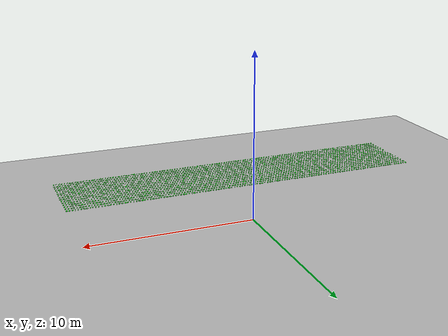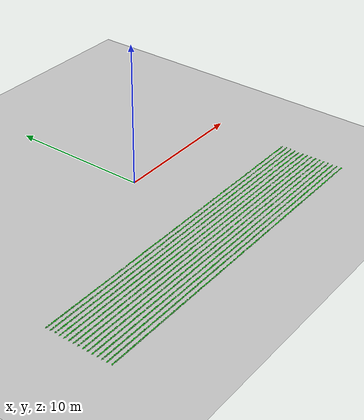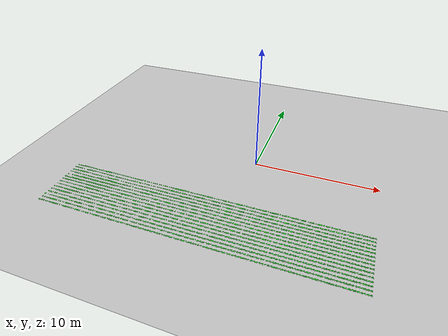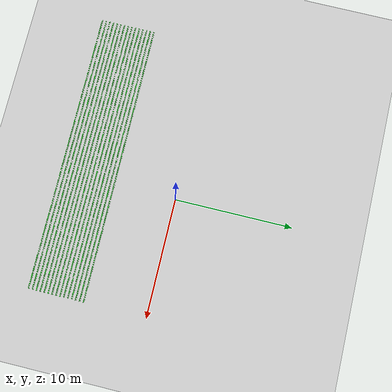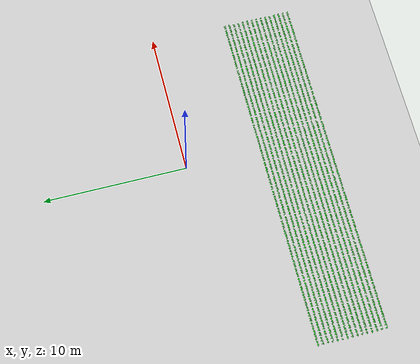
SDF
<sdf version="1.7">
 <world name="default">
  <model name="ground_plane">
   <static>1</static>
   <link name="link">
    <collision name="collision">
     <geometry><plane><normal>0 0 1</normal><size>100 100</size></plane></geometry>
     <surface>
      <contact><collide_bitmask>65535</collide_bitmask></contact>
      <friction><ode><mu>100</mu><mu2>50</mu2></ode></friction>
     </surface>
    </collision>
    <visual name="visual">
     <cast_shadows>0</cast_shadows>
     <geometry><plane><normal>0 0 1</normal><size>100 100</size></plane></geometry>
     <material>
      <script><uri>file://media/materials/scripts/gazebo.material</uri><name>Gazebo/Grey</name></script>
     </material>
    </visual>
   </link>
  </model>
  <model name="one_crop_row_clone_14">
   <link name="link_0">
    <inertial>
     <mass>9.98</mass>
     <inertia>
      <ixx>0.166667</ixx>
      <ixy>0</ixy>
      <ixz>0</ixz>
      <iyy>0.166667</iyy>
      <iyz>0</iyz>
      <izz>0.166667</izz>
     </inertia>
    </inertial>
    <visual name="visual">
     <geometry><mesh><uri>/home/devesh/one_crop_row.stl</uri><scale>1 1 1</scale></mesh></geometry>
     <material>
      <lighting>1</lighting>
      <script><uri>file://media/materials/scripts/gazebo.material</uri><name>Gazebo/Grey</name></script>
      <shader type="pixel"><normal_map>__default__</normal_map></shader>
      <ambient>0 1 0 0</ambient>
      <diffuse>0 1 0 0</diffuse>
      <specular>0 1 0 0</specular>
      <emissive>0 0 0 1</emissive>
     </material>
    </visual>
    <collision name="collision">
     <geometry><mesh><uri>/home/devesh/one_crop_row.stl</uri><scale>1 1 1</scale></mesh></geometry>
     <surface>
      <friction>
       <ode><mu>1</mu><mu2>1</mu2><fdir1>0 0 0</fdir1><slip1>0</slip1><slip2>0</slip2></ode>
       <torsional>
        <coefficient>1</coefficient>
        <patch_radius>0</patch_radius>
        <surface_radius>0</surface_radius>
        <use_patch_radius>1</use_patch_radius>
        <ode><slip>0</slip></ode>
       </torsional>
      </friction>
      <bounce><restitution_coefficient>0</restitution_coefficient><threshold>1e+06</threshold></bounce>
      <contact>
       <collide_without_contact>0</collide_without_contact>
       <collide_without_contact_bitmask>1</collide_without_contact_bitmask>
       <collide_bitmask>1</collide_bitmask>
       <ode>
        <soft_cfm>0</soft_cfm>
        <soft_erp>0.2</soft_erp>
        <kp>1e+13</kp>
        <kd>1</kd>
        <max_vel>0.01</max_vel>
        <min_depth>0</min_depth>
       </ode>
       <bullet>
        <split_impulse>1</split_impulse>
        <split_impulse_penetration_threshold>-0.01</split_impulse_penetration_threshold>
        <soft_cfm>0</soft_cfm>
        <soft_erp>0.2</soft_erp>
        <kp>1e+13</kp>
        <kd>1</kd>
       </bullet>
      </contact>
     </surface>
    </collision>
   </link>
   <static>0</static>
   <pose>-3.99981 -5.99965 0.01587 -0.022081 -3e-06 0.000191</pose>
  </model>
  <model name="one_crop_row_clone_15">
   <link name="link_0">
    <inertial>
     <mass>9.98</mass>
     <inertia>
      <ixx>0.166667</ixx>
      <ixy>0</ixy>
      <ixz>0</ixz>
      <iyy>0.166667</iyy>
      <iyz>0</iyz>
      <izz>0.166667</izz>
     </inertia>
    </inertial>
    <visual name="visual">
     <geometry><mesh><uri>/home/devesh/one_crop_row.stl</uri><scale>1 1 1</scale></mesh></geometry>
     <material>
      <lighting>1</lighting>
      <script><uri>file://media/materials/scripts/gazebo.material</uri><name>Gazebo/Grey</name></script>
      <shader type="pixel"><normal_map>__default__</normal_map></shader>
      <ambient>0 1 0 0</ambient>
      <diffuse>0 1 0 0</diffuse>
      <specular>0 1 0 0</specular>
      <emissive>0 0 0 1</emissive>
     </material>
    </visual>
    <collision name="collision">
     <geometry><mesh><uri>/home/devesh/one_crop_row.stl</uri><scale>1 1 1</scale></mesh></geometry>
     <surface>
      <friction>
       <ode><mu>1</mu><mu2>1</mu2><fdir1>0 0 0</fdir1><slip1>0</slip1><slip2>0</slip2></ode>
       <torsional>
        <coefficient>1</coefficient>
        <patch_radius>0</patch_radius>
        <surface_radius>0</surface_radius>
        <use_patch_radius>1</use_patch_radius>
        <ode><slip>0</slip></ode>
       </torsional>
      </friction>
      <bounce><restitution_coefficient>0</restitution_coefficient><threshold>1e+06</threshold></bounce>
      <contact>
       <collide_without_contact>0</collide_without_contact>
       <collide_without_contact_bitmask>1</collide_without_contact_bitmask>
       <collide_bitmask>1</collide_bitmask>
       <ode>
        <soft_cfm>0</soft_cfm>
        <soft_erp>0.2</soft_erp>
        <kp>1e+13</kp>
        <kd>1</kd>
        <max_vel>0.01</max_vel>
        <min_depth>0</min_depth>
       </ode>
       <bullet>
        <split_impulse>1</split_impulse>
        <split_impulse_penetration_threshold>-0.01</split_impulse_penetration_threshold>
        <soft_cfm>0</soft_cfm>
        <soft_erp>0.2</soft_erp>
        <kp>1e+13</kp>
        <kd>1</kd>
       </bullet>
      </contact>
     </surface>
    </collision>
   </link>
   <static>0</static>
   <pose>-3.99982 -5.32965 0.01587 -0.022064 6e-06 0.000193</pose>
  </model>
  <model name="one_crop_row_clone_16">
   <link name="link_0">
    <inertial>
     <mass>9.98</mass>
     <inertia>
      <ixx>0.166667</ixx>
      <ixy>0</ixy>
      <ixz>0</ixz>
      <iyy>0.166667</iyy>
      <iyz>0</iyz>
      <izz>0.166667</izz>
     </inertia>
    </inertial>
    <visual name="visual">
     <geometry><mesh><uri>/home/devesh/one_crop_row.stl</uri><scale>1 1 1</scale></mesh></geometry>
     <material>
      <lighting>1</lighting>
      <script><uri>file://media/materials/scripts/gazebo.material</uri><name>Gazebo/Grey</name></script>
      <shader type="pixel"><normal_map>__default__</normal_map></shader>
      <ambient>0 1 0 0</ambient>
      <diffuse>0 1 0 0</diffuse>
      <specular>0 1 0 0</specular>
      <emissive>0 0 0 1</emissive>
     </material>
    </visual>
    <collision name="collision">
     <geometry><mesh><uri>/home/devesh/one_crop_row.stl</uri><scale>1 1 1</scale></mesh></geometry>
     <surface>
      <friction>
       <ode><mu>1</mu><mu2>1</mu2><fdir1>0 0 0</fdir1><slip1>0</slip1><slip2>0</slip2></ode>
       <torsional>
        <coefficient>1</coefficient>
        <patch_radius>0</patch_radius>
        <surface_radius>0</surface_radius>
        <use_patch_radius>1</use_patch_radius>
        <ode><slip>0</slip></ode>
       </torsional>
      </friction>
      <bounce><restitution_coefficient>0</restitution_coefficient><threshold>1e+06</threshold></bounce>
      <contact>
       <collide_without_contact>0</collide_without_contact>
       <collide_without_contact_bitmask>1</collide_without_contact_bitmask>
       <collide_bitmask>1</collide_bitmask>
       <ode>
        <soft_cfm>0</soft_cfm>
        <soft_erp>0.2</soft_erp>
        <kp>1e+13</kp>
        <kd>1</kd>
        <max_vel>0.01</max_vel>
        <min_depth>0</min_depth>
       </ode>
       <bullet>
        <split_impulse>1</split_impulse>
        <split_impulse_penetration_threshold>-0.01</split_impulse_penetration_threshold>
        <soft_cfm>0</soft_cfm>
        <soft_erp>0.2</soft_erp>
        <kp>1e+13</kp>
        <kd>1</kd>
       </bullet>
      </contact>
     </surface>
    </collision>
   </link>
   <static>0</static>
   <pose>-3.99981 -5.65965 0.015872 -0.022055 -0 0.000192</pose>
  </model>
  <model name="one_crop_row_clone_17">
   <link name="link_0">
    <inertial>
     <mass>9.98</mass>
     <inertia>
      <ixx>0.166667</ixx>
      <ixy>0</ixy>
      <ixz>0</ixz>
      <iyy>0.166667</iyy>
      <iyz>0</iyz>
      <izz>0.166667</izz>
     </inertia>
    </inertial>
    <visual name="visual">
     <geometry><mesh><uri>/home/devesh/one_crop_row.stl</uri><scale>1 1 1</scale></mesh></geometry>
     <material>
      <lighting>1</lighting>
      <script><uri>file://media/materials/scripts/gazebo.material</uri><name>Gazebo/Grey</name></script>
      <shader type="pixel"><normal_map>__default__</normal_map></shader>
      <ambient>0 1 0 0</ambient>
      <diffuse>0 1 0 0</diffuse>
      <specular>0 1 0 0</specular>
      <emissive>0 0 0 1</emissive>
     </material>
    </visual>
    <collision name="collision">
     <geometry><mesh><uri>/home/devesh/one_crop_row.stl</uri><scale>1 1 1</scale></mesh></geometry>
     <surface>
      <friction>
       <ode><mu>1</mu><mu2>1</mu2><fdir1>0 0 0</fdir1><slip1>0</slip1><slip2>0</slip2></ode>
       <torsional>
        <coefficient>1</coefficient>
        <patch_radius>0</patch_radius>
        <surface_radius>0</surface_radius>
        <use_patch_radius>1</use_patch_radius>
        <ode><slip>0</slip></ode>
       </torsional>
      </friction>
      <bounce><restitution_coefficient>0</restitution_coefficient><threshold>1e+06</threshold></bounce>
      <contact>
       <collide_without_contact>0</collide_without_contact>
       <collide_without_contact_bitmask>1</collide_without_contact_bitmask>
       <collide_bitmask>1</collide_bitmask>
       <ode>
        <soft_cfm>0</soft_cfm>
        <soft_erp>0.2</soft_erp>
        <kp>1e+13</kp>
        <kd>1</kd>
        <max_vel>0.01</max_vel>
        <min_depth>0</min_depth>
       </ode>
       <bullet>
        <split_impulse>1</split_impulse>
        <split_impulse_penetration_threshold>-0.01</split_impulse_penetration_threshold>
        <soft_cfm>0</soft_cfm>
        <soft_erp>0.2</soft_erp>
        <kp>1e+13</kp>
        <kd>1</kd>
       </bullet>
      </contact>
     </surface>
    </collision>
   </link>
   <static>0</static>
   <pose>-3.99981 -6.99965 0.015865 -0.022003 -1e-06 0.000193</pose>
  </model>
  <model name="one_crop_row_clone_18">
   <link name="link_0">
    <inertial>
     <mass>9.98</mass>
     <inertia>
      <ixx>0.166667</ixx>
      <ixy>0</ixy>
      <ixz>0</ixz>
      <iyy>0.166667</iyy>
      <iyz>0</iyz>
      <izz>0.166667</izz>
     </inertia>
    </inertial>
    <visual name="visual">
     <geometry><mesh><uri>/home/devesh/one_crop_row.stl</uri><scale>1 1 1</scale></mesh></geometry>
     <material>
      <lighting>1</lighting>
      <script><uri>file://media/materials/scripts/gazebo.material</uri><name>Gazebo/Grey</name></script>
      <shader type="pixel"><normal_map>__default__</normal_map></shader>
      <ambient>0 1 0 0</ambient>
      <diffuse>0 1 0 0</diffuse>
      <specular>0 1 0 0</specular>
      <emissive>0 0 0 1</emissive>
     </material>
    </visual>
    <collision name="collision">
     <geometry><mesh><uri>/home/devesh/one_crop_row.stl</uri><scale>1 1 1</scale></mesh></geometry>
     <surface>
      <friction>
       <ode><mu>1</mu><mu2>1</mu2><fdir1>0 0 0</fdir1><slip1>0</slip1><slip2>0</slip2></ode>
       <torsional>
        <coefficient>1</coefficient>
        <patch_radius>0</patch_radius>
        <surface_radius>0</surface_radius>
        <use_patch_radius>1</use_patch_radius>
        <ode><slip>0</slip></ode>
       </torsional>
      </friction>
      <bounce><restitution_coefficient>0</restitution_coefficient><threshold>1e+06</threshold></bounce>
      <contact>
       <collide_without_contact>0</collide_without_contact>
       <collide_without_contact_bitmask>1</collide_without_contact_bitmask>
       <collide_bitmask>1</collide_bitmask>
       <ode>
        <soft_cfm>0</soft_cfm>
        <soft_erp>0.2</soft_erp>
        <kp>1e+13</kp>
        <kd>1</kd>
        <max_vel>0.01</max_vel>
        <min_depth>0</min_depth>
       </ode>
       <bullet>
        <split_impulse>1</split_impulse>
        <split_impulse_penetration_threshold>-0.01</split_impulse_penetration_threshold>
        <soft_cfm>0</soft_cfm>
        <soft_erp>0.2</soft_erp>
        <kp>1e+13</kp>
        <kd>1</kd>
       </bullet>
      </contact>
     </surface>
    </collision>
   </link>
   <static>0</static>
   <pose>-3.99981 -6.32965 0.015864 -0.022048 3e-06 0.000189</pose>
  </model>
  <model name="one_crop_row_clone_19">
   <link name="link_0">
    <inertial>
     <mass>9.98</mass>
     <inertia>
      <ixx>0.166667</ixx>
      <ixy>0</ixy>
      <ixz>0</ixz>
      <iyy>0.166667</iyy>
      <iyz>0</iyz>
      <izz>0.166667</izz>
     </inertia>
    </inertial>
    <visual name="visual">
     <geometry><mesh><uri>/home/devesh/one_crop_row.stl</uri><scale>1 1 1</scale></mesh></geometry>
     <material>
      <lighting>1</lighting>
      <script><uri>file://media/materials/scripts/gazebo.material</uri><name>Gazebo/Grey</name></script>
      <shader type="pixel"><normal_map>__default__</normal_map></shader>
      <ambient>0 1 0 0</ambient>
      <diffuse>0 1 0 0</diffuse>
      <specular>0 1 0 0</specular>
      <emissive>0 0 0 1</emissive>
     </material>
    </visual>
    <collision name="collision">
     <geometry><mesh><uri>/home/devesh/one_crop_row.stl</uri><scale>1 1 1</scale></mesh></geometry>
     <surface>
      <friction>
       <ode><mu>1</mu><mu2>1</mu2><fdir1>0 0 0</fdir1><slip1>0</slip1><slip2>0</slip2></ode>
       <torsional>
        <coefficient>1</coefficient>
        <patch_radius>0</patch_radius>
        <surface_radius>0</surface_radius>
        <use_patch_radius>1</use_patch_radius>
        <ode><slip>0</slip></ode>
       </torsional>
      </friction>
      <bounce><restitution_coefficient>0</restitution_coefficient><threshold>1e+06</threshold></bounce>
      <contact>
       <collide_without_contact>0</collide_without_contact>
       <collide_without_contact_bitmask>1</collide_without_contact_bitmask>
       <collide_bitmask>1</collide_bitmask>
       <ode>
        <soft_cfm>0</soft_cfm>
        <soft_erp>0.2</soft_erp>
        <kp>1e+13</kp>
        <kd>1</kd>
        <max_vel>0.01</max_vel>
        <min_depth>0</min_depth>
       </ode>
       <bullet>
        <split_impulse>1</split_impulse>
        <split_impulse_penetration_threshold>-0.01</split_impulse_penetration_threshold>
        <soft_cfm>0</soft_cfm>
        <soft_erp>0.2</soft_erp>
        <kp>1e+13</kp>
        <kd>1</kd>
       </bullet>
      </contact>
     </surface>
    </collision>
   </link>
   <static>0</static>
   <pose>-3.99981 -6.65965 0.015872 -0.022075 -0 0.000193</pose>
  </model>
  <model name="one_crop_row_clone_20">
   <link name="link_0">
    <inertial>
     <mass>9.98</mass>
     <inertia>
      <ixx>0.166667</ixx>
      <ixy>0</ixy>
      <ixz>0</ixz>
      <iyy>0.166667</iyy>
      <iyz>0</iyz>
      <izz>0.166667</izz>
     </inertia>
    </inertial>
    <visual name="visual">
     <geometry><mesh><uri>/home/devesh/one_crop_row.stl</uri><scale>1 1 1</scale></mesh></geometry>
     <material>
      <lighting>1</lighting>
      <script><uri>file://media/materials/scripts/gazebo.material</uri><name>Gazebo/Grey</name></script>
      <shader type="pixel"><normal_map>__default__</normal_map></shader>
      <ambient>0 1 0 0</ambient>
      <diffuse>0 1 0 0</diffuse>
      <specular>0 1 0 0</specular>
      <emissive>0 0 0 1</emissive>
     </material>
    </visual>
    <collision name="collision">
     <geometry><mesh><uri>/home/devesh/one_crop_row.stl</uri><scale>1 1 1</scale></mesh></geometry>
     <surface>
      <friction>
       <ode><mu>1</mu><mu2>1</mu2><fdir1>0 0 0</fdir1><slip1>0</slip1><slip2>0</slip2></ode>
       <torsional>
        <coefficient>1</coefficient>
        <patch_radius>0</patch_radius>
        <surface_radius>0</surface_radius>
        <use_patch_radius>1</use_patch_radius>
        <ode><slip>0</slip></ode>
       </torsional>
      </friction>
      <bounce><restitution_coefficient>0</restitution_coefficient><threshold>1e+06</threshold></bounce>
      <contact>
       <collide_without_contact>0</collide_without_contact>
       <collide_without_contact_bitmask>1</collide_without_contact_bitmask>
       <collide_bitmask>1</collide_bitmask>
       <ode>
        <soft_cfm>0</soft_cfm>
        <soft_erp>0.2</soft_erp>
        <kp>1e+13</kp>
        <kd>1</kd>
        <max_vel>0.01</max_vel>
        <min_depth>0</min_depth>
       </ode>
       <bullet>
        <split_impulse>1</split_impulse>
        <split_impulse_penetration_threshold>-0.01</split_impulse_penetration_threshold>
        <soft_cfm>0</soft_cfm>
        <soft_erp>0.2</soft_erp>
        <kp>1e+13</kp>
        <kd>1</kd>
       </bullet>
      </contact>
     </surface>
    </collision>
   </link>
   <static>0</static>
   <pose>-3.99981 -7.99965 0.01587 -0.02206 6e-06 0.000193</pose>
  </model>
  <model name="one_crop_row_clone_21">
   <link name="link_0">
    <inertial>
     <mass>9.98</mass>
     <inertia>
      <ixx>0.166667</ixx>
      <ixy>0</ixy>
      <ixz>0</ixz>
      <iyy>0.166667</iyy>
      <iyz>0</iyz>
      <izz>0.166667</izz>
     </inertia>
    </inertial>
    <visual name="visual">
     <geometry><mesh><uri>/home/devesh/one_crop_row.stl</uri><scale>1 1 1</scale></mesh></geometry>
     <material>
      <lighting>1</lighting>
      <script><uri>file://media/materials/scripts/gazebo.material</uri><name>Gazebo/Grey</name></script>
      <shader type="pixel"><normal_map>__default__</normal_map></shader>
      <ambient>0 1 0 0</ambient>
      <diffuse>0 1 0 0</diffuse>
      <specular>0 1 0 0</specular>
      <emissive>0 0 0 1</emissive>
     </material>
    </visual>
    <collision name="collision">
     <geometry><mesh><uri>/home/devesh/one_crop_row.stl</uri><scale>1 1 1</scale></mesh></geometry>
     <surface>
      <friction>
       <ode><mu>1</mu><mu2>1</mu2><fdir1>0 0 0</fdir1><slip1>0</slip1><slip2>0</slip2></ode>
       <torsional>
        <coefficient>1</coefficient>
        <patch_radius>0</patch_radius>
        <surface_radius>0</surface_radius>
        <use_patch_radius>1</use_patch_radius>
        <ode><slip>0</slip></ode>
       </torsional>
      </friction>
      <bounce><restitution_coefficient>0</restitution_coefficient><threshold>1e+06</threshold></bounce>
      <contact>
       <collide_without_contact>0</collide_without_contact>
       <collide_without_contact_bitmask>1</collide_without_contact_bitmask>
       <collide_bitmask>1</collide_bitmask>
       <ode>
        <soft_cfm>0</soft_cfm>
        <soft_erp>0.2</soft_erp>
        <kp>1e+13</kp>
        <kd>1</kd>
        <max_vel>0.01</max_vel>
        <min_depth>0</min_depth>
       </ode>
       <bullet>
        <split_impulse>1</split_impulse>
        <split_impulse_penetration_threshold>-0.01</split_impulse_penetration_threshold>
        <soft_cfm>0</soft_cfm>
        <soft_erp>0.2</soft_erp>
        <kp>1e+13</kp>
        <kd>1</kd>
       </bullet>
      </contact>
     </surface>
    </collision>
   </link>
   <static>0</static>
   <pose>-3.9998 -7.32965 0.015873 -0.021993 -0 0.00019</pose>
  </model>
  <model name="one_crop_row_clone_22">
   <link name="link_0">
    <inertial>
     <mass>9.98</mass>
     <inertia>
      <ixx>0.166667</ixx>
      <ixy>0</ixy>
      <ixz>0</ixz>
      <iyy>0.166667</iyy>
      <iyz>0</iyz>
      <izz>0.166667</izz>
     </inertia>
    </inertial>
    <visual name="visual">
     <geometry><mesh><uri>/home/devesh/one_crop_row.stl</uri><scale>1 1 1</scale></mesh></geometry>
     <material>
      <lighting>1</lighting>
      <script><uri>file://media/materials/scripts/gazebo.material</uri><name>Gazebo/Grey</name></script>
      <shader type="pixel"><normal_map>__default__</normal_map></shader>
      <ambient>0 1 0 0</ambient>
      <diffuse>0 1 0 0</diffuse>
      <specular>0 1 0 0</specular>
      <emissive>0 0 0 1</emissive>
     </material>
    </visual>
    <collision name="collision">
     <geometry><mesh><uri>/home/devesh/one_crop_row.stl</uri><scale>1 1 1</scale></mesh></geometry>
     <surface>
      <friction>
       <ode><mu>1</mu><mu2>1</mu2><fdir1>0 0 0</fdir1><slip1>0</slip1><slip2>0</slip2></ode>
       <torsional>
        <coefficient>1</coefficient>
        <patch_radius>0</patch_radius>
        <surface_radius>0</surface_radius>
        <use_patch_radius>1</use_patch_radius>
        <ode><slip>0</slip></ode>
       </torsional>
      </friction>
      <bounce><restitution_coefficient>0</restitution_coefficient><threshold>1e+06</threshold></bounce>
      <contact>
       <collide_without_contact>0</collide_without_contact>
       <collide_without_contact_bitmask>1</collide_without_contact_bitmask>
       <collide_bitmask>1</collide_bitmask>
       <ode>
        <soft_cfm>0</soft_cfm>
        <soft_erp>0.2</soft_erp>
        <kp>1e+13</kp>
        <kd>1</kd>
        <max_vel>0.01</max_vel>
        <min_depth>0</min_depth>
       </ode>
       <bullet>
        <split_impulse>1</split_impulse>
        <split_impulse_penetration_threshold>-0.01</split_impulse_penetration_threshold>
        <soft_cfm>0</soft_cfm>
        <soft_erp>0.2</soft_erp>
        <kp>1e+13</kp>
        <kd>1</kd>
       </bullet>
      </contact>
     </surface>
    </collision>
   </link>
   <static>0</static>
   <pose>-3.99981 -7.65965 0.01587 -0.022114 -7e-06 0.000183</pose>
  </model>
  <model name="one_crop_row_clone_23">
   <link name="link_0">
    <inertial>
     <mass>9.98</mass>
     <inertia>
      <ixx>0.166667</ixx>
      <ixy>0</ixy>
      <ixz>0</ixz>
      <iyy>0.166667</iyy>
      <iyz>0</iyz>
      <izz>0.166667</izz>
     </inertia>
    </inertial>
    <visual name="visual">
     <geometry><mesh><uri>/home/devesh/one_crop_row.stl</uri><scale>1 1 1</scale></mesh></geometry>
     <material>
      <lighting>1</lighting>
      <script><uri>file://media/materials/scripts/gazebo.material</uri><name>Gazebo/Grey</name></script>
      <shader type="pixel"><normal_map>__default__</normal_map></shader>
      <ambient>0 1 0 0</ambient>
      <diffuse>0 1 0 0</diffuse>
      <specular>0 1 0 0</specular>
      <emissive>0 0 0 1</emissive>
     </material>
    </visual>
    <collision name="collision">
     <geometry><mesh><uri>/home/devesh/one_crop_row.stl</uri><scale>1 1 1</scale></mesh></geometry>
     <surface>
      <friction>
       <ode><mu>1</mu><mu2>1</mu2><fdir1>0 0 0</fdir1><slip1>0</slip1><slip2>0</slip2></ode>
       <torsional>
        <coefficient>1</coefficient>
        <patch_radius>0</patch_radius>
        <surface_radius>0</surface_radius>
        <use_patch_radius>1</use_patch_radius>
        <ode><slip>0</slip></ode>
       </torsional>
      </friction>
      <bounce><restitution_coefficient>0</restitution_coefficient><threshold>1e+06</threshold></bounce>
      <contact>
       <collide_without_contact>0</collide_without_contact>
       <collide_without_contact_bitmask>1</collide_without_contact_bitmask>
       <collide_bitmask>1</collide_bitmask>
       <ode>
        <soft_cfm>0</soft_cfm>
        <soft_erp>0.2</soft_erp>
        <kp>1e+13</kp>
        <kd>1</kd>
        <max_vel>0.01</max_vel>
        <min_depth>0</min_depth>
       </ode>
       <bullet>
        <split_impulse>1</split_impulse>
        <split_impulse_penetration_threshold>-0.01</split_impulse_penetration_threshold>
        <soft_cfm>0</soft_cfm>
        <soft_erp>0.2</soft_erp>
        <kp>1e+13</kp>
        <kd>1</kd>
       </bullet>
      </contact>
     </surface>
    </collision>
   </link>
   <static>0</static>
   <pose>-3.99981 -8.99964 0.015865 -0.022072 -2.1e-05 0.000193</pose>
  </model>
  <model name="one_crop_row_clone_24">
   <link name="link_0">
    <inertial>
     <mass>9.98</mass>
     <inertia>
      <ixx>0.166667</ixx>
      <ixy>0</ixy>
      <ixz>0</ixz>
      <iyy>0.166667</iyy>
      <iyz>0</iyz>
      <izz>0.166667</izz>
     </inertia>
    </inertial>
    <visual name="visual">
     <geometry><mesh><uri>/home/devesh/one_crop_row.stl</uri><scale>1 1 1</scale></mesh></geometry>
     <material>
      <lighting>1</lighting>
      <script><uri>file://media/materials/scripts/gazebo.material</uri><name>Gazebo/Grey</name></script>
      <shader type="pixel"><normal_map>__default__</normal_map></shader>
      <ambient>0 1 0 0</ambient>
      <diffuse>0 1 0 0</diffuse>
      <specular>0 1 0 0</specular>
      <emissive>0 0 0 1</emissive>
     </material>
    </visual>
    <collision name="collision">
     <geometry><mesh><uri>/home/devesh/one_crop_row.stl</uri><scale>1 1 1</scale></mesh></geometry>
     <surface>
      <friction>
       <ode><mu>1</mu><mu2>1</mu2><fdir1>0 0 0</fdir1><slip1>0</slip1><slip2>0</slip2></ode>
       <torsional>
        <coefficient>1</coefficient>
        <patch_radius>0</patch_radius>
        <surface_radius>0</surface_radius>
        <use_patch_radius>1</use_patch_radius>
        <ode><slip>0</slip></ode>
       </torsional>
      </friction>
      <bounce><restitution_coefficient>0</restitution_coefficient><threshold>1e+06</threshold></bounce>
      <contact>
       <collide_without_contact>0</collide_without_contact>
       <collide_without_contact_bitmask>1</collide_without_contact_bitmask>
       <collide_bitmask>1</collide_bitmask>
       <ode>
        <soft_cfm>0</soft_cfm>
        <soft_erp>0.2</soft_erp>
        <kp>1e+13</kp>
        <kd>1</kd>
        <max_vel>0.01</max_vel>
        <min_depth>0</min_depth>
       </ode>
       <bullet>
        <split_impulse>1</split_impulse>
        <split_impulse_penetration_threshold>-0.01</split_impulse_penetration_threshold>
        <soft_cfm>0</soft_cfm>
        <soft_erp>0.2</soft_erp>
        <kp>1e+13</kp>
        <kd>1</kd>
       </bullet>
      </contact>
     </surface>
    </collision>
   </link>
   <static>0</static>
   <pose>-3.9998 -8.32965 0.015872 -0.022014 0 0.000189</pose>
  </model>
  <model name="one_crop_row_clone_25">
   <link name="link_0">
    <inertial>
     <mass>9.98</mass>
     <inertia>
      <ixx>0.166667</ixx>
      <ixy>0</ixy>
      <ixz>0</ixz>
      <iyy>0.166667</iyy>
      <iyz>0</iyz>
      <izz>0.166667</izz>
     </inertia>
    </inertial>
    <visual name="visual">
     <geometry><mesh><uri>/home/devesh/one_crop_row.stl</uri><scale>1 1 1</scale></mesh></geometry>
     <material>
      <lighting>1</lighting>
      <script><uri>file://media/materials/scripts/gazebo.material</uri><name>Gazebo/Grey</name></script>
      <shader type="pixel"><normal_map>__default__</normal_map></shader>
      <ambient>0 1 0 0</ambient>
      <diffuse>0 1 0 0</diffuse>
      <specular>0 1 0 0</specular>
      <emissive>0 0 0 1</emissive>
     </material>
    </visual>
    <collision name="collision">
     <geometry><mesh><uri>/home/devesh/one_crop_row.stl</uri><scale>1 1 1</scale></mesh></geometry>
     <surface>
      <friction>
       <ode><mu>1</mu><mu2>1</mu2><fdir1>0 0 0</fdir1><slip1>0</slip1><slip2>0</slip2></ode>
       <torsional>
        <coefficient>1</coefficient>
        <patch_radius>0</patch_radius>
        <surface_radius>0</surface_radius>
        <use_patch_radius>1</use_patch_radius>
        <ode><slip>0</slip></ode>
       </torsional>
      </friction>
      <bounce><restitution_coefficient>0</restitution_coefficient><threshold>1e+06</threshold></bounce>
      <contact>
       <collide_without_contact>0</collide_without_contact>
       <collide_without_contact_bitmask>1</collide_without_contact_bitmask>
       <collide_bitmask>1</collide_bitmask>
       <ode>
        <soft_cfm>0</soft_cfm>
        <soft_erp>0.2</soft_erp>
        <kp>1e+13</kp>
        <kd>1</kd>
        <max_vel>0.01</max_vel>
        <min_depth>0</min_depth>
       </ode>
       <bullet>
        <split_impulse>1</split_impulse>
        <split_impulse_penetration_threshold>-0.01</split_impulse_penetration_threshold>
        <soft_cfm>0</soft_cfm>
        <soft_erp>0.2</soft_erp>
        <kp>1e+13</kp>
        <kd>1</kd>
       </bullet>
      </contact>
     </surface>
    </collision>
   </link>
   <static>0</static>
   <pose>-3.99982 -8.65965 0.015873 -0.021994 -0 0.000195</pose>
  </model>
  <model name="one_crop_row_clone_26">
   <link name="link_0">
    <inertial>
     <mass>9.98</mass>
     <inertia>
      <ixx>0.166667</ixx>
      <ixy>0</ixy>
      <ixz>0</ixz>
      <iyy>0.166667</iyy>
      <iyz>0</iyz>
      <izz>0.166667</izz>
     </inertia>
    </inertial>
    <visual name="visual">
     <geometry><mesh><uri>/home/devesh/one_crop_row.stl</uri><scale>1 1 1</scale></mesh></geometry>
     <material>
      <lighting>1</lighting>
      <script><uri>file://media/materials/scripts/gazebo.material</uri><name>Gazebo/Grey</name></script>
      <shader type="pixel"><normal_map>__default__</normal_map></shader>
      <ambient>0 1 0 0</ambient>
      <diffuse>0 1 0 0</diffuse>
      <specular>0 1 0 0</specular>
      <emissive>0 0 0 1</emissive>
     </material>
    </visual>
    <collision name="collision">
     <geometry><mesh><uri>/home/devesh/one_crop_row.stl</uri><scale>1 1 1</scale></mesh></geometry>
     <surface>
      <friction>
       <ode><mu>1</mu><mu2>1</mu2><fdir1>0 0 0</fdir1><slip1>0</slip1><slip2>0</slip2></ode>
       <torsional>
        <coefficient>1</coefficient>
        <patch_radius>0</patch_radius>
        <surface_radius>0</surface_radius>
        <use_patch_radius>1</use_patch_radius>
        <ode><slip>0</slip></ode>
       </torsional>
      </friction>
      <bounce><restitution_coefficient>0</restitution_coefficient><threshold>1e+06</threshold></bounce>
      <contact>
       <collide_without_contact>0</collide_without_contact>
       <collide_without_contact_bitmask>1</collide_without_contact_bitmask>
       <collide_bitmask>1</collide_bitmask>
       <ode>
        <soft_cfm>0</soft_cfm>
        <soft_erp>0.2</soft_erp>
        <kp>1e+13</kp>
        <kd>1</kd>
        <max_vel>0.01</max_vel>
        <min_depth>0</min_depth>
       </ode>
       <bullet>
        <split_impulse>1</split_impulse>
        <split_impulse_penetration_threshold>-0.01</split_impulse_penetration_threshold>
        <soft_cfm>0</soft_cfm>
        <soft_erp>0.2</soft_erp>
        <kp>1e+13</kp>
        <kd>1</kd>
       </bullet>
      </contact>
     </surface>
    </collision>
   </link>
   <static>0</static>
   <pose>-3.99981 -9.99965 0.015873 -0.021998 0 0.000194</pose>
  </model>
  <model name="one_crop_row_clone_27">
   <link name="link_0">
    <inertial>
     <mass>9.98</mass>
     <inertia>
      <ixx>0.166667</ixx>
      <ixy>0</ixy>
      <ixz>0</ixz>
      <iyy>0.166667</iyy>
      <iyz>0</iyz>
      <izz>0.166667</izz>
     </inertia>
    </inertial>
    <visual name="visual">
     <geometry><mesh><uri>/home/devesh/one_crop_row.stl</uri><scale>1 1 1</scale></mesh></geometry>
     <material>
      <lighting>1</lighting>
      <script><uri>file://media/materials/scripts/gazebo.material</uri><name>Gazebo/Grey</name></script>
      <shader type="pixel"><normal_map>__default__</normal_map></shader>
      <ambient>0 1 0 0</ambient>
      <diffuse>0 1 0 0</diffuse>
      <specular>0 1 0 0</specular>
      <emissive>0 0 0 1</emissive>
     </material>
    </visual>
    <collision name="collision">
     <geometry><mesh><uri>/home/devesh/one_crop_row.stl</uri><scale>1 1 1</scale></mesh></geometry>
     <surface>
      <friction>
       <ode><mu>1</mu><mu2>1</mu2><fdir1>0 0 0</fdir1><slip1>0</slip1><slip2>0</slip2></ode>
       <torsional>
        <coefficient>1</coefficient>
        <patch_radius>0</patch_radius>
        <surface_radius>0</surface_radius>
        <use_patch_radius>1</use_patch_radius>
        <ode><slip>0</slip></ode>
       </torsional>
      </friction>
      <bounce><restitution_coefficient>0</restitution_coefficient><threshold>1e+06</threshold></bounce>
      <contact>
       <collide_without_contact>0</collide_without_contact>
       <collide_without_contact_bitmask>1</collide_without_contact_bitmask>
       <collide_bitmask>1</collide_bitmask>
       <ode>
        <soft_cfm>0</soft_cfm>
        <soft_erp>0.2</soft_erp>
        <kp>1e+13</kp>
        <kd>1</kd>
        <max_vel>0.01</max_vel>
        <min_depth>0</min_depth>
       </ode>
       <bullet>
        <split_impulse>1</split_impulse>
        <split_impulse_penetration_threshold>-0.01</split_impulse_penetration_threshold>
        <soft_cfm>0</soft_cfm>
        <soft_erp>0.2</soft_erp>
        <kp>1e+13</kp>
        <kd>1</kd>
       </bullet>
      </contact>
     </surface>
    </collision>
   </link>
   <static>0</static>
   <pose>-3.99984 -9.32965 0.015865 -0.021966 -3e-06 0.000196</pose>
  </model>
  <model name="one_crop_row_clone_28">
   <link name="link_0">
    <inertial>
     <mass>9.98</mass>
     <inertia>
      <ixx>0.166667</ixx>
      <ixy>0</ixy>
      <ixz>0</ixz>
      <iyy>0.166667</iyy>
      <iyz>0</iyz>
      <izz>0.166667</izz>
     </inertia>
    </inertial>
    <visual name="visual">
     <geometry><mesh><uri>/home/devesh/one_crop_row.stl</uri><scale>1 1 1</scale></mesh></geometry>
     <material>
      <lighting>1</lighting>
      <script><uri>file://media/materials/scripts/gazebo.material</uri><name>Gazebo/Grey</name></script>
      <shader type="pixel"><normal_map>__default__</normal_map></shader>
      <ambient>0 1 0 0</ambient>
      <diffuse>0 1 0 0</diffuse>
      <specular>0 1 0 0</specular>
      <emissive>0 0 0 1</emissive>
     </material>
    </visual>
    <collision name="collision">
     <geometry><mesh><uri>/home/devesh/one_crop_row.stl</uri><scale>1 1 1</scale></mesh></geometry>
     <surface>
      <friction>
       <ode><mu>1</mu><mu2>1</mu2><fdir1>0 0 0</fdir1><slip1>0</slip1><slip2>0</slip2></ode>
       <torsional>
        <coefficient>1</coefficient>
        <patch_radius>0</patch_radius>
        <surface_radius>0</surface_radius>
        <use_patch_radius>1</use_patch_radius>
        <ode><slip>0</slip></ode>
       </torsional>
      </friction>
      <bounce><restitution_coefficient>0</restitution_coefficient><threshold>1e+06</threshold></bounce>
      <contact>
       <collide_without_contact>0</collide_without_contact>
       <collide_without_contact_bitmask>1</collide_without_contact_bitmask>
       <collide_bitmask>1</collide_bitmask>
       <ode>
        <soft_cfm>0</soft_cfm>
        <soft_erp>0.2</soft_erp>
        <kp>1e+13</kp>
        <kd>1</kd>
        <max_vel>0.01</max_vel>
        <min_depth>0</min_depth>
       </ode>
       <bullet>
        <split_impulse>1</split_impulse>
        <split_impulse_penetration_threshold>-0.01</split_impulse_penetration_threshold>
        <soft_cfm>0</soft_cfm>
        <soft_erp>0.2</soft_erp>
        <kp>1e+13</kp>
        <kd>1</kd>
       </bullet>
      </contact>
     </surface>
    </collision>
   </link>
   <static>0</static>
   <pose>-3.9998 -9.65964 0.015872 -0.022099 -0 0.000195</pose>
  </model>
 </world>
</sdf>
